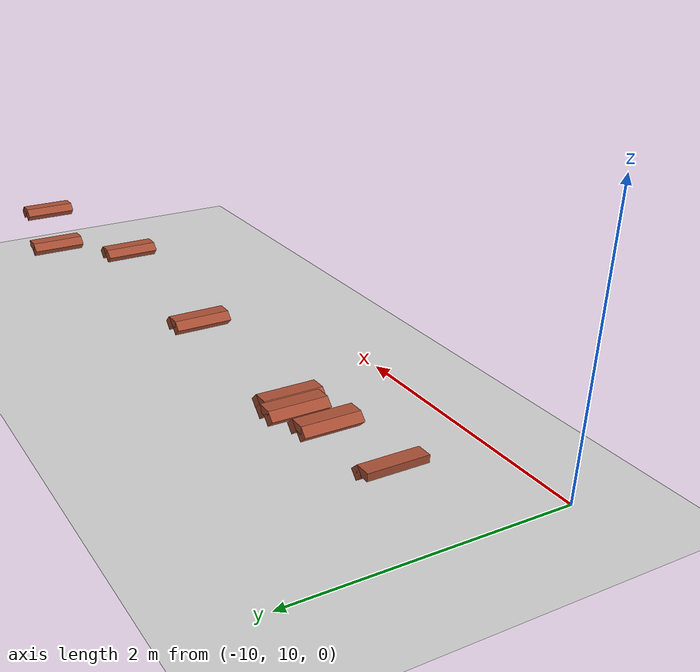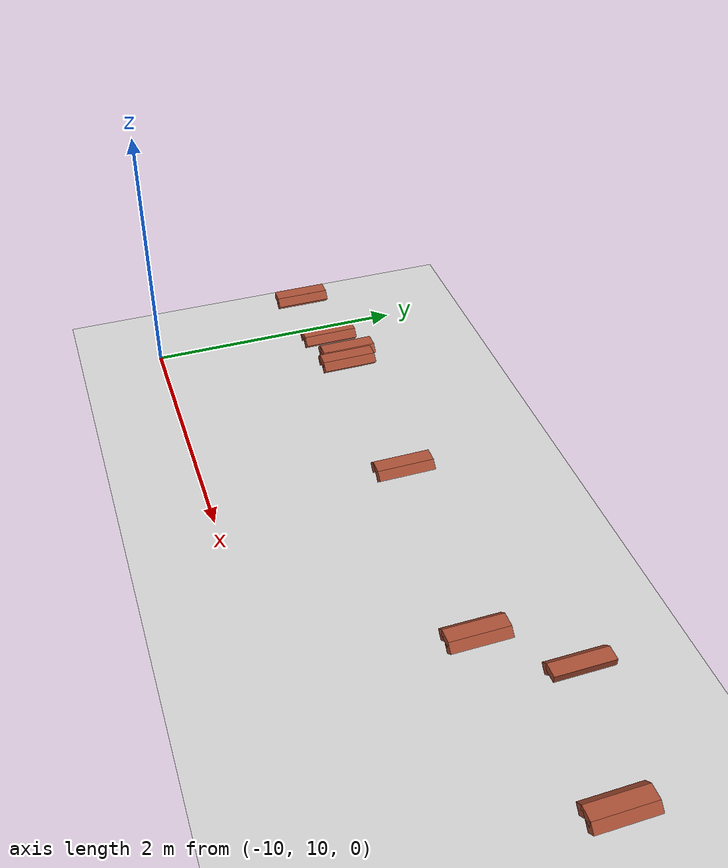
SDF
<sdf version="1.7">
 <world name="default">
  <model name="ground_plane">
   <static>1</static>
   <link name="link">
    <collision name="collision">
     <geometry><plane><normal>0 0 1</normal><size>100 100</size></plane></geometry>
     <surface><friction><ode><mu>100</mu><mu2>50</mu2></ode></friction></surface>
    </collision>
    <visual name="visual">
     <cast_shadows>0</cast_shadows>
     <geometry><plane><normal>0 0 1</normal><size>100 100</size></plane></geometry>
     <material>
      <script><uri>file://media/materials/scripts/gazebo.material</uri><name>Gazebo/Grey</name></script>
     </material>
    </visual>
   </link>
  </model>
  <model name="tumsek">
   <static>1</static>
   <pose>-5.17447 11.4027 0.5 0 -0 0</pose>
   <link name="tumsek_main_2">
    <pose>-0.578517 0.253678 0 0 -0 0</pose>
    <collision name="tumsek_Collision">
     <geometry><box><size>0.1 0.4 0.05</size></box></geometry>
     <pose>0 0 0.025 0 -0 0</pose>
    </collision>
    <visual name="tumsek_Visual">
     <pose>0 0 0.025 0 -0 0</pose>
     <geometry><box><size>0.1 0.4 0.05</size></box></geometry>
     <material>
      <script><uri>file://media/materials/scripts/gazebo.material</uri><name>Gazebo/Bricks</name></script>
      <ambient>1 1 1 1</ambient>
     </material>
     <meta><layer>0</layer></meta>
    </visual>
   </link>
   <link name="tumsek_back_2">
    <pose>-0.628517 0.253678 0 0 0.785 0</pose>
    <collision name="tumsek_Collision"><geometry><box><size>0.0707 0.4 0.0707</size></box></geometry></collision>
    <visual name="tumsek_Visual">
     <geometry><box><size>0.0707 0.4 0.0707</size></box></geometry>
     <material>
      <script><uri>file://media/materials/scripts/gazebo.material</uri><name>Gazebo/Bricks</name></script>
      <ambient>1 1 1 1</ambient>
     </material>
    </visual>
   </link>
   <link name="tumsek_main_4">
    <pose>-0.987853 -0.219527 0 0 -0 0</pose>
    <collision name="tumsek_Collision">
     <geometry><box><size>0.1 0.4 0.05</size></box></geometry>
     <pose>0 0 0.025 0 -0 0</pose>
    </collision>
    <visual name="tumsek_Visual">
     <pose>0 0 0.025 0 -0 0</pose>
     <geometry><box><size>0.1 0.4 0.05</size></box></geometry>
     <material>
      <script><uri>file://media/materials/scripts/gazebo.material</uri><name>Gazebo/Bricks</name></script>
      <ambient>1 1 1 1</ambient>
     </material>
     <meta><layer>0</layer></meta>
    </visual>
   </link>
   <link name="tumsek_front_4">
    <pose>-0.937853 -0.219527 0 0 0.785 0</pose>
    <collision name="tumsek_Collision"><geometry><box><size>0.0707 0.4 0.0707</size></box></geometry></collision>
    <visual name="tumsek_Visual">
     <geometry><box><size>0.0707 0.4 0.0707</size></box></geometry>
     <material>
      <script><uri>file://media/materials/scripts/gazebo.material</uri><name>Gazebo/Bricks</name></script>
      <ambient>1 1 1 1</ambient>
     </material>
    </visual>
   </link>
   <link name="tumsek_back_4">
    <pose>-1.03785 -0.219527 0 0 0.785 0</pose>
    <collision name="tumsek_Collision"><geometry><box><size>0.0707 0.4 0.0707</size></box></geometry></collision>
    <visual name="tumsek_Visual">
     <geometry><box><size>0.0707 0.4 0.0707</size></box></geometry>
     <material>
      <script><uri>file://media/materials/scripts/gazebo.material</uri><name>Gazebo/Bricks</name></script>
      <ambient>1 1 1 1</ambient>
     </material>
    </visual>
   </link>
   <link name="tumsek_main_13">
    <pose>-3.82893 -0.09566 0 0 -0 0</pose>
    <collision name="tumsek_Collision">
     <geometry><box><size>0.1 0.4 0.05</size></box></geometry>
     <pose>0 0 0.025 0 -0 0</pose>
    </collision>
    <visual name="tumsek_Visual">
     <pose>0 0 0.025 0 -0 0</pose>
     <geometry><box><size>0.1 0.4 0.05</size></box></geometry>
     <material>
      <script><uri>file://media/materials/scripts/gazebo.material</uri><name>Gazebo/Bricks</name></script>
      <ambient>1 1 1 1</ambient>
     </material>
     <meta><layer>0</layer></meta>
    </visual>
   </link>
   <link name="tumsek_front_13">
    <pose>-3.77893 -0.09566 0 0 0.785 0</pose>
    <collision name="tumsek_Collision"><geometry><box><size>0.0707 0.4 0.0707</size></box></geometry></collision>
    <visual name="tumsek_Visual">
     <geometry><box><size>0.0707 0.4 0.0707</size></box></geometry>
     <material>
      <script><uri>file://media/materials/scripts/gazebo.material</uri><name>Gazebo/Bricks</name></script>
      <ambient>1 1 1 1</ambient>
     </material>
    </visual>
   </link>
   <link name="tumsek_back_13">
    <pose>-3.87893 -0.09566 0 0 0.785 0</pose>
    <collision name="tumsek_Collision"><geometry><box><size>0.0707 0.4 0.0707</size></box></geometry></collision>
    <visual name="tumsek_Visual">
     <geometry><box><size>0.0707 0.4 0.0707</size></box></geometry>
     <material>
      <script><uri>file://media/materials/scripts/gazebo.material</uri><name>Gazebo/Bricks</name></script>
      <ambient>1 1 1 1</ambient>
     </material>
    </visual>
   </link>
   <link name="tumsek_main_16">
    <pose>-3.71648 -0.131651 0 0 -0 0</pose>
    <collision name="tumsek_Collision">
     <geometry><box><size>0.1 0.4 0.05</size></box></geometry>
     <pose>0 0 0.025 0 -0 0</pose>
    </collision>
    <visual name="tumsek_Visual">
     <pose>0 0 0.025 0 -0 0</pose>
     <geometry><box><size>0.1 0.4 0.05</size></box></geometry>
     <material>
      <script><uri>file://media/materials/scripts/gazebo.material</uri><name>Gazebo/Bricks</name></script>
      <ambient>1 1 1 1</ambient>
     </material>
     <meta><layer>0</layer></meta>
    </visual>
   </link>
   <link name="tumsek_front_16">
    <pose>-3.66648 -0.131651 0 0 0.785 0</pose>
    <collision name="tumsek_Collision"><geometry><box><size>0.0707 0.4 0.0707</size></box></geometry></collision>
    <visual name="tumsek_Visual">
     <geometry><box><size>0.0707 0.4 0.0707</size></box></geometry>
     <material>
      <script><uri>file://media/materials/scripts/gazebo.material</uri><name>Gazebo/Bricks</name></script>
      <ambient>1 1 1 1</ambient>
     </material>
    </visual>
   </link>
   <link name="tumsek_back_16">
    <pose>-3.76648 -0.131651 0 0 0.785 0</pose>
    <collision name="tumsek_Collision"><geometry><box><size>0.0707 0.4 0.0707</size></box></geometry></collision>
    <visual name="tumsek_Visual">
     <geometry><box><size>0.0707 0.4 0.0707</size></box></geometry>
     <material>
      <script><uri>file://media/materials/scripts/gazebo.material</uri><name>Gazebo/Bricks</name></script>
      <ambient>1 1 1 1</ambient>
     </material>
    </visual>
   </link>
   <link name="tumsek_main_20">
    <pose>-4.06409 -0.173776 0 0 -0 0</pose>
    <collision name="tumsek_Collision">
     <geometry><box><size>0.1 0.4 0.05</size></box></geometry>
     <pose>0 0 0.025 0 -0 0</pose>
    </collision>
    <visual name="tumsek_Visual">
     <pose>0 0 0.025 0 -0 0</pose>
     <geometry><box><size>0.1 0.4 0.05</size></box></geometry>
     <material>
      <script><uri>file://media/materials/scripts/gazebo.material</uri><name>Gazebo/Bricks</name></script>
      <ambient>1 1 1 1</ambient>
     </material>
     <meta><layer>0</layer></meta>
    </visual>
   </link>
   <link name="tumsek_front_20">
    <pose>-4.01409 -0.173776 0 0 0.785 0</pose>
    <collision name="tumsek_Collision"><geometry><box><size>0.0707 0.4 0.0707</size></box></geometry></collision>
    <visual name="tumsek_Visual">
     <geometry><box><size>0.0707 0.4 0.0707</size></box></geometry>
     <material>
      <script><uri>file://media/materials/scripts/gazebo.material</uri><name>Gazebo/Bricks</name></script>
      <ambient>1 1 1 1</ambient>
     </material>
    </visual>
   </link>
   <link name="tumsek_back_20">
    <pose>-4.11409 -0.173776 0 0 0.785 0</pose>
    <collision name="tumsek_Collision"><geometry><box><size>0.0707 0.4 0.0707</size></box></geometry></collision>
    <visual name="tumsek_Visual">
     <geometry><box><size>0.0707 0.4 0.0707</size></box></geometry>
     <material>
      <script><uri>file://media/materials/scripts/gazebo.material</uri><name>Gazebo/Bricks</name></script>
      <ambient>1 1 1 1</ambient>
     </material>
    </visual>
   </link>
   <link name="tumsek_main_21">
    <pose>0.274118 0.040193 0 0 -0 0</pose>
    <collision name="tumsek_Collision">
     <geometry><box><size>0.1 0.4 0.05</size></box></geometry>
     <pose>0 0 0.025 0 -0 0</pose>
    </collision>
    <visual name="tumsek_Visual">
     <pose>0 0 0.025 0 -0 0</pose>
     <geometry><box><size>0.1 0.4 0.05</size></box></geometry>
     <material>
      <script><uri>file://media/materials/scripts/gazebo.material</uri><name>Gazebo/Bricks</name></script>
      <ambient>1 1 1 1</ambient>
     </material>
     <meta><layer>0</layer></meta>
    </visual>
   </link>
   <link name="tumsek_front_21">
    <pose>0.324118 0.040193 0 0 0.785 0</pose>
    <collision name="tumsek_Collision"><geometry><box><size>0.0707 0.4 0.0707</size></box></geometry></collision>
    <visual name="tumsek_Visual">
     <geometry><box><size>0.0707 0.4 0.0707</size></box></geometry>
     <material>
      <script><uri>file://media/materials/scripts/gazebo.material</uri><name>Gazebo/Bricks</name></script>
      <ambient>1 1 1 1</ambient>
     </material>
    </visual>
   </link>
   <link name="tumsek_back_21">
    <pose>0.224118 0.040193 0 0 0.785 0</pose>
    <collision name="tumsek_Collision"><geometry><box><size>0.0707 0.4 0.0707</size></box></geometry></collision>
    <visual name="tumsek_Visual">
     <geometry><box><size>0.0707 0.4 0.0707</size></box></geometry>
     <material>
      <script><uri>file://media/materials/scripts/gazebo.material</uri><name>Gazebo/Bricks</name></script>
      <ambient>1 1 1 1</ambient>
     </material>
    </visual>
   </link>
   <link name="tumsek_main_36">
    <pose>-4.63445 -0.23491 0 0 -0 0</pose>
    <collision name="tumsek_Collision">
     <geometry><box><size>0.1 0.4 0.05</size></box></geometry>
     <pose>0 0 0.025 0 -0 0</pose>
    </collision>
    <visual name="tumsek_Visual">
     <pose>0 0 0.025 0 -0 0</pose>
     <geometry><box><size>0.1 0.4 0.05</size></box></geometry>
     <material>
      <script><uri>file://media/materials/scripts/gazebo.material</uri><name>Gazebo/Bricks</name></script>
      <ambient>1 1 1 1</ambient>
     </material>
     <meta><layer>0</layer></meta>
    </visual>
   </link>
   <link name="tumsek_front_36">
    <pose>-4.58445 -0.23491 0 0 0.785 0</pose>
    <collision name="tumsek_Collision"><geometry><box><size>0.0707 0.4 0.0707</size></box></geometry></collision>
    <visual name="tumsek_Visual">
     <geometry><box><size>0.0707 0.4 0.0707</size></box></geometry>
     <material>
      <script><uri>file://media/materials/scripts/gazebo.material</uri><name>Gazebo/Bricks</name></script>
      <ambient>1 1 1 1</ambient>
     </material>
    </visual>
   </link>
   <link name="tumsek_main_39">
    <pose>-2.46639 -0.134407 0 0 -0 0</pose>
    <collision name="tumsek_Collision">
     <geometry><box><size>0.1 0.4 0.05</size></box></geometry>
     <pose>0 0 0.025 0 -0 0</pose>
    </collision>
    <visual name="tumsek_Visual">
     <pose>0 0 0.025 0 -0 0</pose>
     <geometry><box><size>0.1 0.4 0.05</size></box></geometry>
     <material>
      <script><uri>file://media/materials/scripts/gazebo.material</uri><name>Gazebo/Bricks</name></script>
      <ambient>1 1 1 1</ambient>
     </material>
     <meta><layer>0</layer></meta>
    </visual>
   </link>
   <link name="tumsek_front_39">
    <pose>-2.41639 -0.134407 0 0 0.785 0</pose>
    <collision name="tumsek_Collision"><geometry><box><size>0.0707 0.4 0.0707</size></box></geometry></collision>
    <visual name="tumsek_Visual">
     <geometry><box><size>0.0707 0.4 0.0707</size></box></geometry>
     <material>
      <script><uri>file://media/materials/scripts/gazebo.material</uri><name>Gazebo/Bricks</name></script>
      <ambient>1 1 1 1</ambient>
     </material>
    </visual>
   </link>
   <link name="tumsek_back_39">
    <pose>-2.51639 -0.134407 0 0 0.785 0</pose>
    <collision name="tumsek_Collision"><geometry><box><size>0.0707 0.4 0.0707</size></box></geometry></collision>
    <visual name="tumsek_Visual">
     <geometry><box><size>0.0707 0.4 0.0707</size></box></geometry>
     <material>
      <script><uri>file://media/materials/scripts/gazebo.material</uri><name>Gazebo/Bricks</name></script>
      <ambient>1 1 1 1</ambient>
     </material>
    </visual>
   </link>
  </model>
 </world>
</sdf>
